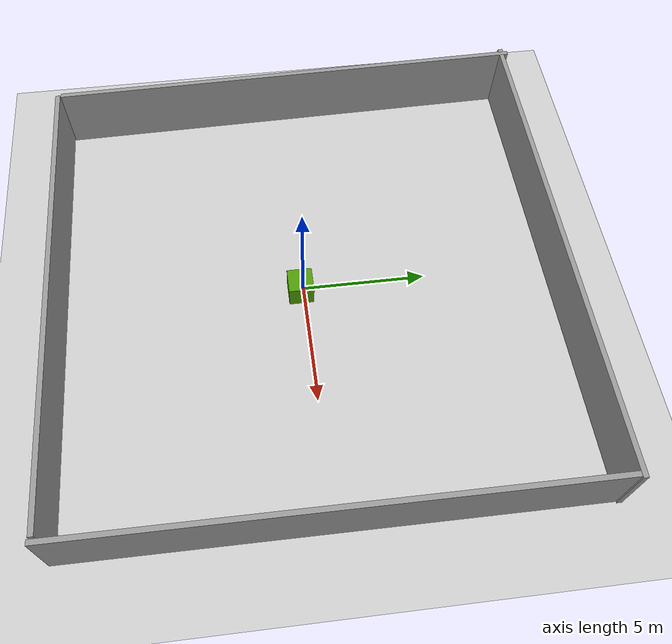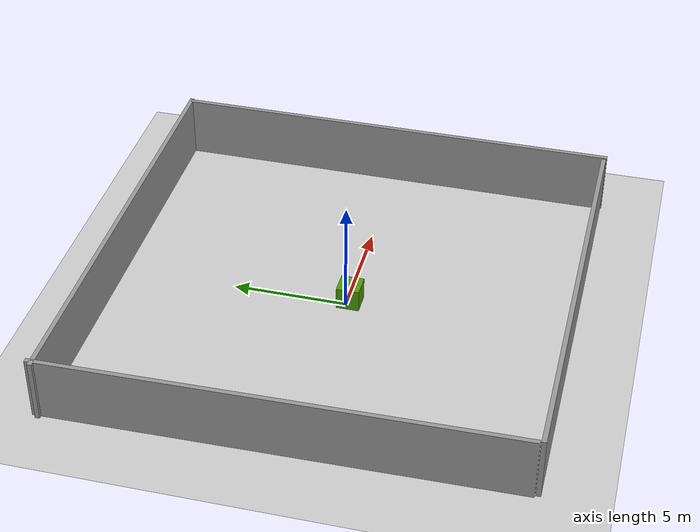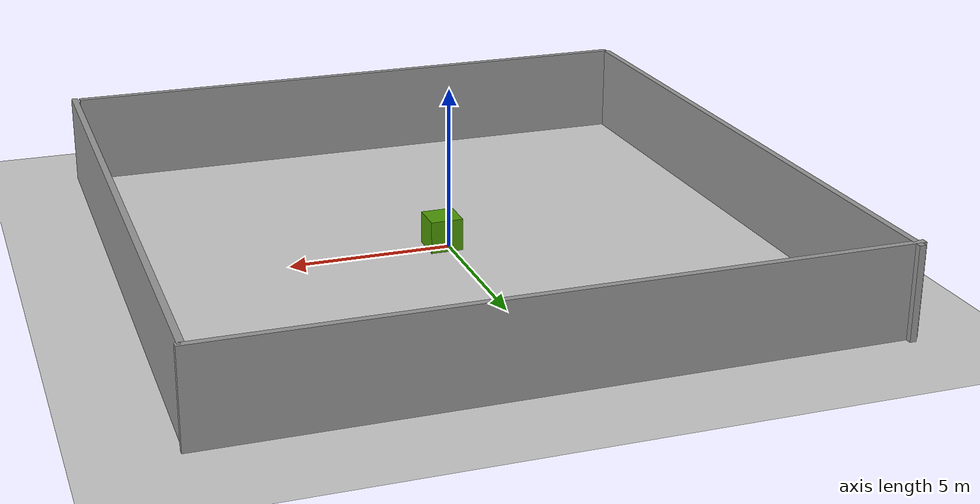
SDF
<sdf version="1.7">
 <world name="default">
  <light name="sun" type="directional">
   <pose>0 0 10 0 -0 0</pose>
   <diffuse>0.8 0.8 0.8 1</diffuse>
   <specular>0.2 0.2 0.2 1</specular>
   <attenuation>
    <range>1000</range>
    <constant>0.9</constant>
    <linear>0.01</linear>
    <quadratic>0.001</quadratic>
   </attenuation>
   <direction>-0.5 0.1 -0.9</direction>
   <spot><inner_angle>0</inner_angle><outer_angle>0</outer_angle><falloff>0</falloff></spot>
  </light>
  <model name="ground_plane">
   <static>1</static>
   <link name="link">
    <collision name="collision">
     <geometry><plane><normal>0 0 1</normal><size>100 100</size></plane></geometry>
     <surface>
      <contact><collide_bitmask>65535</collide_bitmask></contact>
      <friction><ode><mu>100</mu><mu2>50</mu2></ode></friction>
     </surface>
    </collision>
    <visual name="visual">
     <cast_shadows>0</cast_shadows>
     <geometry><plane><normal>0 0 1</normal><size>100 100</size></plane></geometry>
     <material>
      <script><uri>file://media/materials/scripts/gazebo.material</uri><name>Gazebo/Grey</name></script>
     </material>
    </visual>
   </link>
  </model>
  <gravity>0 0 -9.8</gravity>
  <magnetic_field>6e-06 2.3e-05 -4.2e-05</magnetic_field>
  <atmosphere type="adiabatic"/>
  <physics type="ode">
   <max_step_size>0.001</max_step_size>
   <real_time_factor>1</real_time_factor>
   <real_time_update_rate>1000</real_time_update_rate>
  </physics>
  <scene><ambient>0.4 0.4 0.4 1</ambient><background>0.7 0.7 0.7 1</background><shadows>1</shadows></scene>
  <spherical_coordinates>
   <surface_model>EARTH_WGS84</surface_model>
   <latitude_deg>0</latitude_deg>
   <longitude_deg>0</longitude_deg>
   <elevation>0</elevation>
   <heading_deg>0</heading_deg>
  </spherical_coordinates>
  <light name="sun" type="directional">
   <pose>-2.73028 -0.000402 10 0 -0 0</pose>
   <diffuse>0.8 0.8 0.8 1</diffuse>
   <specular>0.2 0.2 0.2 1</specular>
   <attenuation>
    <range>1000</range>
    <constant>0.9</constant>
    <linear>0.01</linear>
    <quadratic>0.001</quadratic>
   </attenuation>
   <direction>-0.5 0.1 -0.9</direction>
  </light>
  <light name="sun" type="directional">
   <pose>-0.004996 0.817296 10 0 -0 0</pose>
   <diffuse>0.8 0.8 0.8 1</diffuse>
   <specular>0.2 0.2 0.2 1</specular>
   <attenuation>
    <range>1000</range>
    <constant>0.9</constant>
    <linear>0.01</linear>
    <quadratic>0.001</quadratic>
   </attenuation>
   <direction>-0.5 0.1 -0.9</direction>
  </light>
  <model name="unit_sphere">
   <link name="link_6">
    <inertial>
     <mass>1</mass>
     <inertia>
      <ixx>0.166667</ixx>
      <ixy>0</ixy>
      <ixz>0</ixz>
      <iyy>0.166667</iyy>
      <iyz>0</iyz>
      <izz>0.166667</izz>
     </inertia>
    </inertial>
    <pose>-1.3596 2.75087 0 0 -0 0</pose>
    <visual name="visual">
     <geometry><box><size>1 1 1</size></box></geometry>
     <material>
      <lighting>1</lighting>
      <script><uri>file://media/materials/scripts/gazebo.material</uri><name>Gazebo/Grey</name></script>
      <shader type="pixel"><normal_map>__default__</normal_map></shader>
      <ambient>0.306 0.604 0.024 1</ambient>
      <diffuse>0.306 0.604 0.024 1</diffuse>
      <specular>0.306 0.604 0.024 1</specular>
      <emissive>0.306 0.604 0.024 1</emissive>
     </material>
     <transparency>0.05</transparency>
    </visual>
    <collision name="collision">
     <geometry><box><size>1 1 1</size></box></geometry>
     <surface>
      <friction>
       <ode><mu>1</mu><mu2>1</mu2><fdir1>0 0 0</fdir1><slip1>0</slip1><slip2>0</slip2></ode>
       <torsional>
        <coefficient>1</coefficient>
        <patch_radius>0</patch_radius>
        <surface_radius>0</surface_radius>
        <use_patch_radius>1</use_patch_radius>
        <ode><slip>0</slip></ode>
       </torsional>
      </friction>
      <bounce><restitution_coefficient>0</restitution_coefficient><threshold>1e+06</threshold></bounce>
      <contact>
       <collide_without_contact>0</collide_without_contact>
       <collide_without_contact_bitmask>1</collide_without_contact_bitmask>
       <collide_bitmask>1</collide_bitmask>
       <ode>
        <soft_cfm>0</soft_cfm>
        <soft_erp>0.2</soft_erp>
        <kp>1e+13</kp>
        <kd>1</kd>
        <max_vel>0.01</max_vel>
        <min_depth>0</min_depth>
       </ode>
       <bullet>
        <split_impulse>1</split_impulse>
        <split_impulse_penetration_threshold>-0.01</split_impulse_penetration_threshold>
        <soft_cfm>0</soft_cfm>
        <soft_erp>0.2</soft_erp>
        <kp>1e+13</kp>
        <kd>1</kd>
       </bullet>
      </contact>
     </surface>
    </collision>
   </link>
   <static>0</static>
   <pose>1.54253 -2.8835 0.5 0 -0 0</pose>
  </model>
  <model name="grey_wall">
   <link name="link">
    <pose>5.90497 -0.269311 1.4 0 -0 0</pose>
    <inertial>
     <mass>1</mass>
     <inertia><ixx>1</ixx><ixy>0</ixy><ixz>0</ixz><iyy>1</iyy><iyz>0</iyz><izz>1</izz></inertia>
    </inertial>
    <visual name="visual">
     <cast_shadows>0</cast_shadows>
     <geometry><box><size>20 0.2 2.8</size></box></geometry>
     <material>
      <script>
       <uri>model://grey_wall/materials/scripts</uri>
       <uri>model://grey_wall/materials/textures</uri>
       <name>vrc/grey_wall</name>
      </script>
      <shader type="pixel"><normal_map>__default__</normal_map></shader>
      <ambient>1 1 1 1</ambient>
      <diffuse>1 1 1 1</diffuse>
      <specular>1 1 1 1</specular>
      <emissive>1 1 1 1</emissive>
     </material>
    </visual>
    <collision name="collision">
     <geometry><box><size>7.5 0.2 2.8</size></box></geometry>
     <surface>
      <friction>
       <ode><mu>1</mu><mu2>1</mu2><fdir1>0 0 0</fdir1><slip1>0</slip1><slip2>0</slip2></ode>
       <torsional>
        <coefficient>1</coefficient>
        <patch_radius>0</patch_radius>
        <surface_radius>0</surface_radius>
        <use_patch_radius>1</use_patch_radius>
        <ode><slip>0</slip></ode>
       </torsional>
      </friction>
      <bounce><restitution_coefficient>0</restitution_coefficient><threshold>1e+06</threshold></bounce>
      <contact>
       <collide_without_contact>0</collide_without_contact>
       <collide_without_contact_bitmask>1</collide_without_contact_bitmask>
       <collide_bitmask>1</collide_bitmask>
       <ode>
        <soft_cfm>0</soft_cfm>
        <soft_erp>0.2</soft_erp>
        <kp>1e+13</kp>
        <kd>1</kd>
        <max_vel>0.01</max_vel>
        <min_depth>0</min_depth>
       </ode>
       <bullet>
        <split_impulse>1</split_impulse>
        <split_impulse_penetration_threshold>-0.01</split_impulse_penetration_threshold>
        <soft_cfm>0</soft_cfm>
        <soft_erp>0.2</soft_erp>
        <kp>1e+13</kp>
        <kd>1</kd>
       </bullet>
      </contact>
     </surface>
    </collision>
   </link>
   <link name="link_clone">
    <pose>15.6961 -10.2572 1.4 0 0 -1.57617</pose>
    <inertial>
     <mass>1</mass>
     <inertia><ixx>1</ixx><ixy>0</ixy><ixz>0</ixz><iyy>1</iyy><iyz>0</iyz><izz>1</izz></inertia>
    </inertial>
    <visual name="visual">
     <cast_shadows>0</cast_shadows>
     <geometry><box><size>20 0.2 2.8</size></box></geometry>
     <material>
      <script>
       <uri>model://grey_wall/materials/scripts</uri>
       <uri>model://grey_wall/materials/textures</uri>
       <name>vrc/grey_wall</name>
      </script>
      <shader type="pixel"><normal_map>__default__</normal_map></shader>
      <ambient>1 1 1 1</ambient>
      <diffuse>1 1 1 1</diffuse>
      <specular>1 1 1 1</specular>
      <emissive>1 1 1 1</emissive>
     </material>
    </visual>
    <collision name="collision">
     <geometry><box><size>7.5 0.2 2.8</size></box></geometry>
     <surface>
      <friction>
       <ode><mu>1</mu><mu2>1</mu2><fdir1>0 0 0</fdir1><slip1>0</slip1><slip2>0</slip2></ode>
       <torsional>
        <coefficient>1</coefficient>
        <patch_radius>0</patch_radius>
        <surface_radius>0</surface_radius>
        <use_patch_radius>1</use_patch_radius>
        <ode><slip>0</slip></ode>
       </torsional>
      </friction>
      <bounce><restitution_coefficient>0</restitution_coefficient><threshold>1e+06</threshold></bounce>
      <contact>
       <collide_without_contact>0</collide_without_contact>
       <collide_without_contact_bitmask>1</collide_without_contact_bitmask>
       <collide_bitmask>1</collide_bitmask>
       <ode>
        <soft_cfm>0</soft_cfm>
        <soft_erp>0.2</soft_erp>
        <kp>1e+13</kp>
        <kd>1</kd>
        <max_vel>0.01</max_vel>
        <min_depth>0</min_depth>
       </ode>
       <bullet>
        <split_impulse>1</split_impulse>
        <split_impulse_penetration_threshold>-0.01</split_impulse_penetration_threshold>
        <soft_cfm>0</soft_cfm>
        <soft_erp>0.2</soft_erp>
        <kp>1e+13</kp>
        <kd>1</kd>
       </bullet>
      </contact>
     </surface>
    </collision>
   </link>
   <link name="link_clone_0">
    <pose>5.9824 -20.1198 1.4 0 -0 0</pose>
    <inertial>
     <mass>1</mass>
     <inertia><ixx>1</ixx><ixy>0</ixy><ixz>0</ixz><iyy>1</iyy><iyz>0</iyz><izz>1</izz></inertia>
    </inertial>
    <visual name="visual">
     <cast_shadows>0</cast_shadows>
     <geometry><box><size>19 0.2 2.8</size></box></geometry>
     <material>
      <script>
       <uri>model://grey_wall/materials/scripts</uri>
       <uri>model://grey_wall/materials/textures</uri>
       <name>vrc/grey_wall</name>
      </script>
      <shader type="pixel"><normal_map>__default__</normal_map></shader>
      <ambient>1 1 1 1</ambient>
      <diffuse>1 1 1 1</diffuse>
      <specular>1 1 1 1</specular>
      <emissive>1 1 1 1</emissive>
     </material>
    </visual>
    <collision name="collision">
     <geometry><box><size>7.5 0.2 2.8</size></box></geometry>
     <surface>
      <friction>
       <ode><mu>1</mu><mu2>1</mu2><fdir1>0 0 0</fdir1><slip1>0</slip1><slip2>0</slip2></ode>
       <torsional>
        <coefficient>1</coefficient>
        <patch_radius>0</patch_radius>
        <surface_radius>0</surface_radius>
        <use_patch_radius>1</use_patch_radius>
        <ode><slip>0</slip></ode>
       </torsional>
      </friction>
      <bounce><restitution_coefficient>0</restitution_coefficient><threshold>1e+06</threshold></bounce>
      <contact>
       <collide_without_contact>0</collide_without_contact>
       <collide_without_contact_bitmask>1</collide_without_contact_bitmask>
       <collide_bitmask>1</collide_bitmask>
       <ode>
        <soft_cfm>0</soft_cfm>
        <soft_erp>0.2</soft_erp>
        <kp>1e+13</kp>
        <kd>1</kd>
        <max_vel>0.01</max_vel>
        <min_depth>0</min_depth>
       </ode>
       <bullet>
        <split_impulse>1</split_impulse>
        <split_impulse_penetration_threshold>-0.01</split_impulse_penetration_threshold>
        <soft_cfm>0</soft_cfm>
        <soft_erp>0.2</soft_erp>
        <kp>1e+13</kp>
        <kd>1</kd>
       </bullet>
      </contact>
     </surface>
    </collision>
   </link>
   <link name="link_clone_1">
    <pose>-3.68806 -9.99223 1.4 0 -0 1.58779</pose>
    <inertial>
     <mass>1</mass>
     <inertia><ixx>1</ixx><ixy>0</ixy><ixz>0</ixz><iyy>1</iyy><iyz>0</iyz><izz>1</izz></inertia>
    </inertial>
    <visual name="visual">
     <cast_shadows>0</cast_shadows>
     <geometry><box><size>20 0.2 2.8</size></box></geometry>
     <material>
      <script>
       <uri>model://grey_wall/materials/scripts</uri>
       <uri>model://grey_wall/materials/textures</uri>
       <name>vrc/grey_wall</name>
      </script>
      <shader type="pixel"><normal_map>__default__</normal_map></shader>
      <ambient>1 1 1 1</ambient>
      <diffuse>1 1 1 1</diffuse>
      <specular>1 1 1 1</specular>
      <emissive>1 1 1 1</emissive>
     </material>
    </visual>
    <collision name="collision">
     <geometry><box><size>7.5 0.2 2.8</size></box></geometry>
     <surface>
      <friction>
       <ode><mu>1</mu><mu2>1</mu2><fdir1>0 0 0</fdir1><slip1>0</slip1><slip2>0</slip2></ode>
       <torsional>
        <coefficient>1</coefficient>
        <patch_radius>0</patch_radius>
        <surface_radius>0</surface_radius>
        <use_patch_radius>1</use_patch_radius>
        <ode><slip>0</slip></ode>
       </torsional>
      </friction>
      <bounce><restitution_coefficient>0</restitution_coefficient><threshold>1e+06</threshold></bounce>
      <contact>
       <collide_without_contact>0</collide_without_contact>
       <collide_without_contact_bitmask>1</collide_without_contact_bitmask>
       <collide_bitmask>1</collide_bitmask>
       <ode>
        <soft_cfm>0</soft_cfm>
        <soft_erp>0.2</soft_erp>
        <kp>1e+13</kp>
        <kd>1</kd>
        <max_vel>0.01</max_vel>
        <min_depth>0</min_depth>
       </ode>
       <bullet>
        <split_impulse>1</split_impulse>
        <split_impulse_penetration_threshold>-0.01</split_impulse_penetration_threshold>
        <soft_cfm>0</soft_cfm>
        <soft_erp>0.2</soft_erp>
        <kp>1e+13</kp>
        <kd>1</kd>
       </bullet>
      </contact>
     </surface>
    </collision>
   </link>
   <static>1</static>
   <pose>-5.7908 10.4104 0 0 -0 0</pose>
  </model>
 </world>
</sdf>
